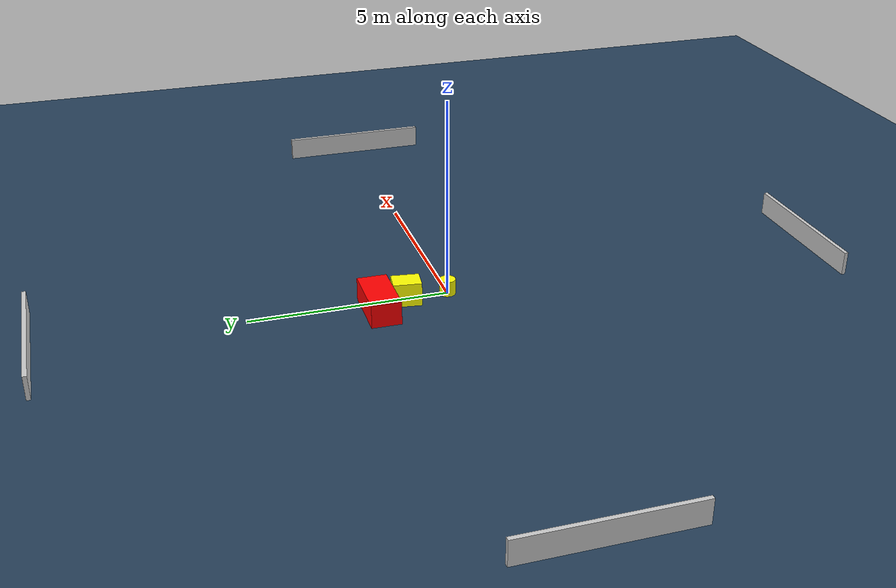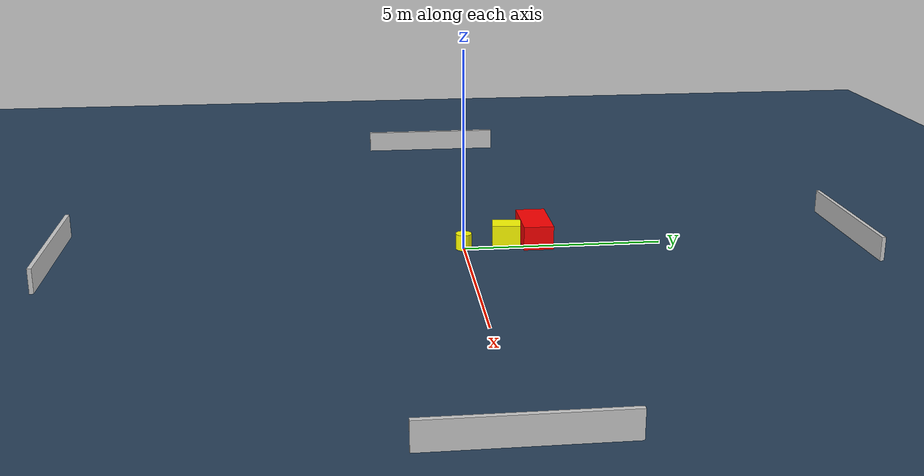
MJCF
<?xml version="1.0" ?>
<mujoco model="generated_environment">
  <option timestep="0.01" integrator="RK4" cone="elliptic"/>
  <default>
    <geom density="1"/>
  </default>
  <asset>
    <texture builtin="gradient" height="3072" name="skybox" rgb1="0.3 0.5 0.7" rgb2="0 0 0" type="skybox" width="512"/>
    <texture builtin="checker" height="300" name="groundplane" rgb1="0.2 0.3 0.4" rgb2="0.1 0.2 0.3" type="2d" width="300"/>
    <material name="groundplane" reflectance="0.2" texrepeat="5 5" texture="groundplane"/>
  </asset>
  <worldbody>
    <light dir="0 0 -1" directional="true" pos="0 0 1.5"/>
    <geom condim="3" friction="0.5 0.005 0.001" material="groundplane" name="floor" pos="0 0 0" size="0 0 0.05" type="plane"/>
    <body name="walls">
      <geom name="wall_1" condim="4" pos="-10.0 0.0 0.3" rgba="0.800000011920929 0.800000011920929 0.800000011920929 1.0" size="0.05 2.0 0.3" type="box"/>
      <geom name="wall_2" condim="4" pos="10.0 0.0 0.3" rgba="0.800000011920929 0.800000011920929 0.800000011920929 1.0" size="0.05 2.0 0.3" type="box"/>
      <geom name="wall_3" condim="4" pos="0.0 -10.0 0.3" rgba="0.800000011920929 0.800000011920929 0.800000011920929 1.0" size="2.0 0.05 0.3" type="box"/>
      <geom name="wall_4" condim="4" pos="0.0 10.0 0.3" rgba="0.800000011920929 0.800000011920929 0.800000011920929 1.0" size="2.0 0.05 0.3" type="box"/>
    </body>
    <body name="robot">
      <joint name="joint_x" type="slide" pos="0 0 0" axis="1 0 0"/>
      <joint name="joint_y" type="slide" pos="0 0 0" axis="0 1 0"/>
      <geom name="robot" type="cylinder" pos="0.0 0.0 0.2" size="0.2 0.2 0.0" mass="5.0" friction="1.0 0.005 0.0001" condim="4" rgba="1.0 1.0 0.0 1.0"/>
    </body>
    <body name="obstacle_1_movable">
      <geom name="obstacle_1_movable" condim="4" pos="-0.10930533630587487 1.0890938207870227 0.3" euler="0 0 172.5801598078241" friction="0.0 0.005 0.001" rgba="1.0 1.0 0.0 1.0" size="0.26721803583659215 0.3537072239627298 0.3" type="box" mass="0.1"/>
      <joint type="free"/>
    </body>
    <body name="obstacle_2_static">
      <geom name="obstacle_2_static" condim="4" pos="-0.4288740785142145 1.8547043542887094 0.3" euler="0 0 359.69252196390846" friction="0.0 0.005 0.001" rgba="1.0 0.0 0.0 1.0" size="0.7412147535875027 0.37365360202911707 0.3" type="box"/>
    </body>
  </worldbody>
  <actuator>
    <motor name="actuator_x" joint="joint_x" gear="1" ctrlrange="-1 1"/>
    <motor name="actuator_y" joint="joint_y" gear="1" ctrlrange="-1 1"/>
  </actuator>
</mujoco>
